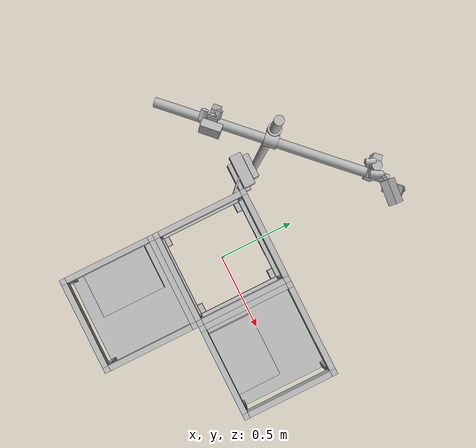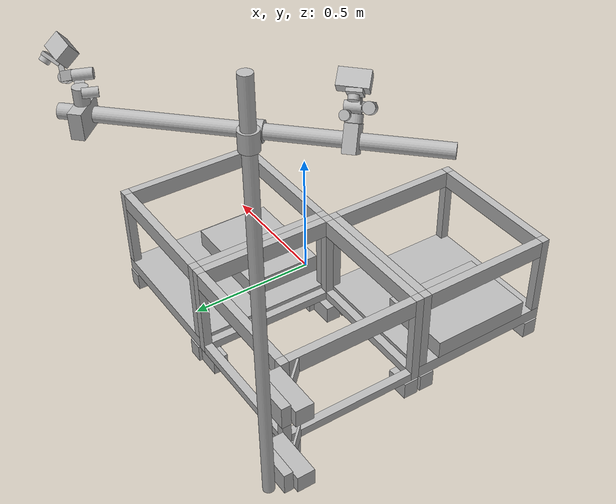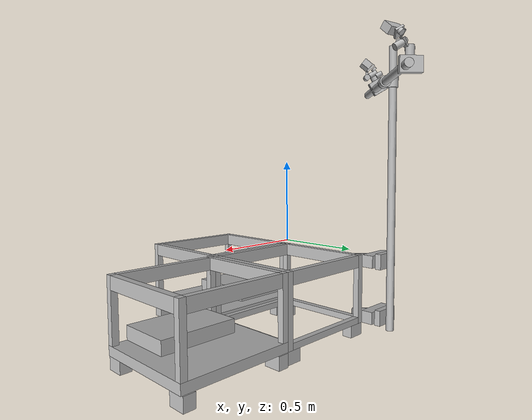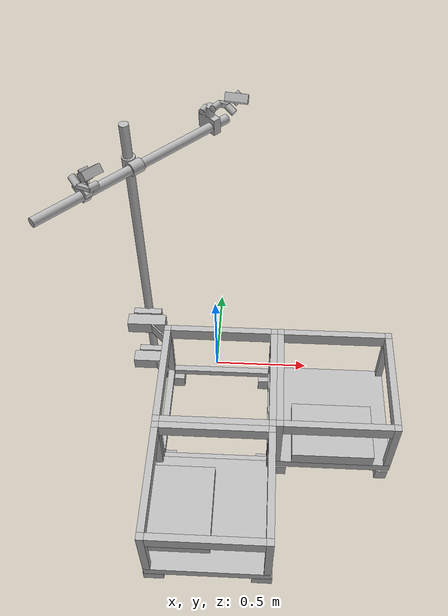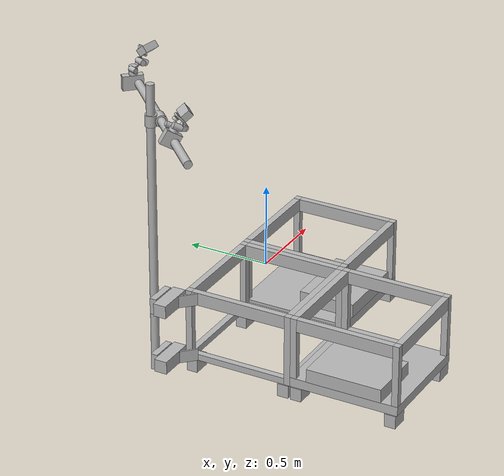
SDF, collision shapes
<?xml version="1.0"?>
<sdf version="1.7" xmlns:drake="drake.mit.edu">
  <model name="riverway_station">
    <link name="station_arm_cart_right">
      <pose>0 -0.6896 -0.099295 0 0 0</pose>
      <inertial>
        <!-- These are just placeholder inertial values, since this body is
        fixed to the world-->
        <pose>5.43e-05 -0.0196 0.0505 0 0 0</pose>
        <mass>0.136</mass>
        <inertia>
          <ixx> 0.000109</ixx>
          <ixy>-0.000000</ixy>
          <ixz> 0.000000</ixz>
          <iyy> 0.000128</iyy>
          <iyz>-0.000000</iyz>
          <izz> 0.000054</izz>
        </inertia>
      </inertial>
      <visual name="station_arm_cart_right">
        <pose>0 0 0 0 0 0</pose>
        <geometry>
          <mesh>
          <uri>/data/kylehatch/lbm_eval/lbm_eval_models/stations/franka_station/assets/station_arm_cart.gltf</uri>
            <scale>1.0 1.0 1.0</scale>
          </mesh>
        </geometry>
      </visual>
      <collision name="arm_cart_back_right_wheel_collision_box">
        <pose>0.29638 0.3024 -0.49143 0.0 -0.0 0.0</pose>
        <geometry>
          <box>
            <size>0.11144 0.06997 0.08225</size>
          </box>
        </geometry>
      </collision>
      <collision name="arm_cart_back_right_wheel_collision_box.001">
        <pose>0.29638 -0.3024 -0.49143 0.0 -0.0 0.0</pose>
        <geometry>
          <box>
            <size>0.11144 0.06997 0.08225</size>
          </box>
        </geometry>
      </collision>
      <collision name="arm_cart_bottom_collision_box">
        <pose>0.0 0.0 -0.42048 0.0 -0.0 0.0</pose>
        <geometry>
          <box>
            <size>0.6896 0.6896 0.05905</size>
          </box>
        </geometry>
      </collision>
      <collision name="arm_cart_franka_control_collision_box">
        <pose>-0.1688 0.0 -0.34845 0.0 -0.0 0.0</pose>
        <geometry>
          <box>
            <size>0.357 0.478 0.085</size>
          </box>
        </geometry>
      </collision>
      <collision name="arm_cart_front_left_wheel_collision_box">
        <pose>-0.29638 0.3024 -0.49143 0.0 -0.0 0.0</pose>
        <geometry>
          <box>
            <size>0.11144 0.06997 0.08225</size>
          </box>
        </geometry>
      </collision>
      <collision name="arm_cart_front_right_wheel_collision_box">
        <pose>-0.29638 -0.3024 -0.49143 0.0 -0.0 0.0</pose>
        <geometry>
          <box>
            <size>0.11144 0.06997 0.08225</size>
          </box>
        </geometry>
      </collision>
      <collision name="arm_cart_top_back_collision_box">
        <pose>0.3248 0.0 -0.04 0.0 -0.0 0.0</pose>
        <geometry>
          <box>
            <size>0.04 0.6096 0.08</size>
          </box>
        </geometry>
      </collision>
      <collision name="arm_cart_top_front_collision_box">
        <pose>-0.3248 0.0 -0.04 0.0 -0.0 0.0</pose>
        <geometry>
          <box>
            <size>0.04 0.6096 0.08</size>
          </box>
        </geometry>
      </collision>
      <collision name="arm_cart_top_left_collision_box">
        <pose>0.0 0.3248 -0.04 0.0 -0.0 1.5708</pose>
        <geometry>
          <box>
            <size>0.04 0.6096 0.08</size>
          </box>
        </geometry>
      </collision>
      <collision name="arm_cart_top_right_collision_box">
        <pose>0.0 -0.3248 -0.04 0.0 -0.0 1.5708</pose>
        <geometry>
          <box>
            <size>0.04 0.6096 0.08</size>
          </box>
        </geometry>
      </collision>
      <collision name="arm_cart_vertical_back_left_collision_box">
        <pose>0.3248 0.3248 -0.19548 0.0 -0.0 0.0</pose>
        <geometry>
          <box>
            <size>0.04 0.04 0.39095</size>
          </box>
        </geometry>
      </collision>
      <collision name="arm_cart_vertical_back_right_collision_box">
        <pose>0.3248 -0.3248 -0.19548 0.0 -0.0 0.0</pose>
        <geometry>
          <box>
            <size>0.04 0.04 0.39095</size>
          </box>
        </geometry>
      </collision>
      <collision name="arm_cart_vertical_front_left_collision_box">
        <pose>-0.3248 0.3248 -0.19548 0.0 -0.0 0.0</pose>
        <geometry>
          <box>
            <size>0.04 0.04 0.39095</size>
          </box>
        </geometry>
      </collision>
      <collision name="arm_cart_vertical_front_right_collision_box">
        <pose>-0.3248 -0.3248 -0.19548 0.0 -0.0 0.0</pose>
        <geometry>
          <box>
            <size>0.04 0.04 0.39095</size>
          </box>
        </geometry>
      </collision>
    </link>
    <link name="station_arm_cart_left">
      <pose>0.6896 0 -0.099295 0 0 1.5708</pose>
      <inertial>
        <!-- These are just placeholder inertial values, since this body is
        fixed to the world-->
        <pose>5.43e-05 -0.0196 0.0505 0 0 0</pose>
        <mass>0.136</mass>
        <inertia>
          <ixx> 0.000109</ixx>
          <ixy>-0.000000</ixy>
          <ixz> 0.000000</ixz>
          <iyy> 0.000128</iyy>
          <iyz>-0.000000</iyz>
          <izz> 0.000054</izz>
        </inertia>
      </inertial>
      <visual name="station_arm_cart_left">
        <pose>0 0 0 0 0 0</pose>
        <geometry>
          <mesh>
            <uri>/data/kylehatch/lbm_eval/lbm_eval_models/stations/franka_station/assets/station_arm_cart.gltf</uri>
            <scale>1.0 1.0 1.0</scale>
          </mesh>
        </geometry>
      </visual>
      <collision name="arm_cart_back_right_wheel_collision_box">
        <pose>0.29638 0.3024 -0.49143 0.0 -0.0 0.0</pose>
        <geometry>
          <box>
            <size>0.11144 0.06997 0.08225</size>
          </box>
        </geometry>
      </collision>
      <collision name="arm_cart_back_right_wheel_collision_box.001">
        <pose>0.29638 -0.3024 -0.49143 0.0 -0.0 0.0</pose>
        <geometry>
          <box>
            <size>0.11144 0.06997 0.08225</size>
          </box>
        </geometry>
      </collision>
      <collision name="arm_cart_bottom_collision_box">
        <pose>0.0 0.0 -0.42048 0.0 -0.0 0.0</pose>
        <geometry>
          <box>
            <size>0.6896 0.6896 0.05905</size>
          </box>
        </geometry>
      </collision>
      <collision name="arm_cart_franka_control_collision_box">
        <pose>-0.1688 0.0 -0.34845 0.0 -0.0 0.0</pose>
        <geometry>
          <box>
            <size>0.357 0.478 0.085</size>
          </box>
        </geometry>
      </collision>
      <collision name="arm_cart_front_left_wheel_collision_box">
        <pose>-0.29638 0.3024 -0.49143 0.0 -0.0 0.0</pose>
        <geometry>
          <box>
            <size>0.11144 0.06997 0.08225</size>
          </box>
        </geometry>
      </collision>
      <collision name="arm_cart_front_right_wheel_collision_box">
        <pose>-0.29638 -0.3024 -0.49143 0.0 -0.0 0.0</pose>
        <geometry>
          <box>
            <size>0.11144 0.06997 0.08225</size>
          </box>
        </geometry>
      </collision>
      <collision name="arm_cart_top_back_collision_box">
        <pose>0.3248 0.0 -0.04 0.0 -0.0 0.0</pose>
        <geometry>
          <box>
            <size>0.04 0.6096 0.08</size>
          </box>
        </geometry>
      </collision>
      <collision name="arm_cart_top_front_collision_box">
        <pose>-0.3248 0.0 -0.04 0.0 -0.0 0.0</pose>
        <geometry>
          <box>
            <size>0.04 0.6096 0.08</size>
          </box>
        </geometry>
      </collision>
      <collision name="arm_cart_top_left_collision_box">
        <pose>0.0 0.3248 -0.04 0.0 -0.0 1.5708</pose>
        <geometry>
          <box>
            <size>0.04 0.6096 0.08</size>
          </box>
        </geometry>
      </collision>
      <collision name="arm_cart_top_right_collision_box">
        <pose>0.0 -0.3248 -0.04 0.0 -0.0 1.5708</pose>
        <geometry>
          <box>
            <size>0.04 0.6096 0.08</size>
          </box>
        </geometry>
      </collision>
      <collision name="arm_cart_vertical_back_left_collision_box">
        <pose>0.3248 0.3248 -0.19548 0.0 -0.0 0.0</pose>
        <geometry>
          <box>
            <size>0.04 0.04 0.39095</size>
          </box>
        </geometry>
      </collision>
      <collision name="arm_cart_vertical_back_right_collision_box">
        <pose>0.3248 -0.3248 -0.19548 0.0 -0.0 0.0</pose>
        <geometry>
          <box>
            <size>0.04 0.04 0.39095</size>
          </box>
        </geometry>
      </collision>
      <collision name="arm_cart_vertical_front_left_collision_box">
        <pose>-0.3248 0.3248 -0.19548 0.0 -0.0 0.0</pose>
        <geometry>
          <box>
            <size>0.04 0.04 0.39095</size>
          </box>
        </geometry>
      </collision>
      <collision name="arm_cart_vertical_front_right_collision_box">
        <pose>-0.3248 -0.3248 -0.19548 0.0 -0.0 0.0</pose>
        <geometry>
          <box>
            <size>0.04 0.04 0.39095</size>
          </box>
        </geometry>
      </collision>
    </link>
    <link name="station_table_cart">
      <pose>0 0 -0.099295 0 0 0</pose>
      <inertial>
        <!-- These are just placeholder inertial values, since this body is
        fixed to the world-->
        <pose>5.43e-05 -0.0196 0.0505 0 0 0</pose>
        <mass>0.136</mass>
        <inertia>
          <ixx> 0.000109</ixx>
          <ixy>-0.000000</ixy>
          <ixz> 0.000000</ixz>
          <iyy> 0.000128</iyy>
          <iyz>-0.000000</iyz>
          <izz> 0.000054</izz>
        </inertia>
      </inertial>
      <visual name="station_table_cart">
        <pose>0 0 0 0 0 0</pose>
        <geometry>
          <mesh>
            <uri>/data/kylehatch/lbm_eval/lbm_eval_models/stations/franka_station/assets/station_table_cart.gltf</uri>
            <scale>1.0 1.0 1.0</scale>
          </mesh>
        </geometry>
      </visual>
      <collision name="camera_left_collision_base_box">
        <pose>-0.6483 0.24775 1.12349 2.10351 0.0 0.77681</pose>
        <geometry>
          <box>
            <size>0.043 0.08951 0.09998</size>
          </box>
        </geometry>
      </collision>
      <collision name="camera_left_collision_box">
        <pose>-0.62256 0.17861 1.19346 0.41602 -0.34462 1.48384</pose>
        <geometry>
          <box>
            <size>0.01822 0.06427 0.03147</size>
          </box>
        </geometry>
      </collision>
      <collision name="camera_left_collision_box.001">
        <pose>-0.60212 0.18475 1.20887 1.60122 0.14737 2.35535</pose>
        <geometry>
          <box>
            <size>0.01645 0.02924 0.00436</size>
          </box>
        </geometry>
      </collision>
      <collision name="camera_left_collision_box.002">
        <pose>-0.60691 0.21 1.24482 -0.76817 -3.1115 0.78009</pose>
        <geometry>
          <box>
            <size>0.05 0.061 0.0125</size>
          </box>
        </geometry>
      </collision>
      <collision name="camera_left_collision_cylinder">
        <pose>-0.63246 0.23165 1.17896 0.39937 -0.36251 1.4756</pose>
        <geometry>
          <cylinder>
            <radius>0.02719</radius>
            <length>0.027</length>
          </cylinder>
        </geometry>
      </collision>
      <collision name="camera_left_collision_cylinder.001">
        <pose>-0.63384 0.26364 1.20028 1.0371 -0.05908 3.9388</pose>
        <geometry>
          <cylinder>
            <radius>0.01621</radius>
            <length>0.04376</length>
          </cylinder>
        </geometry>
      </collision>
      <collision name="camera_left_collision_cylinder.002">
        <pose>-0.66134 0.19597 1.2144 1.0361 -0.08284 3.95291</pose>
        <geometry>
          <cylinder>
            <radius>0.01942</radius>
            <length>0.05538</length>
          </cylinder>
        </geometry>
      </collision>
      <collision name="camera_left_collision_cylinder.003">
        <pose>-0.58224 0.19875 1.18098 1.60155 0.20861 2.35726</pose>
        <geometry>
          <cylinder>
            <radius>0.01951</radius>
            <length>0.054</length>
          </cylinder>
        </geometry>
      </collision>
      <collision name="camera_left_collision_cylinder.004">
        <pose>-0.62448 0.22857 1.24092 -0.7681 -3.10939 0.77792</pose>
        <geometry>
          <cylinder>
            <radius>0.01747</radius>
            <length>0.0165</length>
          </cylinder>
        </geometry>
      </collision>
      <collision name="camera_left_main_camera_collision_box">
        <pose>-0.57919 0.19384 1.26633 0.90171 -0.01125 0.77134</pose>
        <geometry>
          <box>
            <size>0.10113 0.044 0.059</size>
          </box>
        </geometry>
      </collision>
      <collision name="camera_right_collision_base_box">
        <pose>-0.0755 0.83854 1.11225 0.0 -0.0 2.34761</pose>
        <geometry>
          <box>
            <size>0.12543 0.04391 0.08894</size>
          </box>
        </geometry>
      </collision>
      <collision name="camera_right_collision_box">
        <pose>-0.04785 0.82398 1.20889 0.76533 -0.00049 4.32723</pose>
        <geometry>
          <box>
            <size>0.03037 0.01785 0.00998</size>
          </box>
        </geometry>
      </collision>
      <collision name="camera_right_collision_box.001">
        <pose>0.03449 0.84372 1.23151 2.10765 0.20231 1.14393</pose>
        <geometry>
          <box>
            <size>0.01645 0.02435 0.00436</size>
          </box>
        </geometry>
      </collision>
      <collision name="camera_right_collision_box.002">
        <pose>5e-05 0.83873 1.21866 0.33572 0.41994 0.33522</pose>
        <geometry>
          <box>
            <size>0.06045 0.0174 0.03147</size>
          </box>
        </geometry>
      </collision>
      <collision name="camera_right_collision_box.003">
        <pose>0.07049 0.8551 1.24797 2.50526 -0.52475 2.5957</pose>
        <geometry>
          <box>
            <size>0.05 0.061 0.0125</size>
          </box>
        </geometry>
      </collision>
      <collision name="camera_right_collision_cylinder">
        <pose>-0.07268 0.83452 1.18505 0.01454 -0.01384 1.97093</pose>
        <geometry>
          <cylinder>
            <radius>0.02508</radius>
            <length>0.05582</length>
          </cylinder>
        </geometry>
      </collision>
      <collision name="camera_right_collision_cylinder.001">
        <pose>-0.10262 0.81584 1.20119 1.5703 -0.04117 -0.38514</pose>
        <geometry>
          <cylinder>
            <radius>0.01613</radius>
            <length>0.04978</length>
          </cylinder>
        </geometry>
      </collision>
      <collision name="camera_right_collision_cylinder.002">
        <pose>-0.03679 0.80577 1.22888 1.48618 0.4637 -0.53989</pose>
        <geometry>
          <cylinder>
            <radius>0.01817</radius>
            <length>0.06419</length>
          </cylinder>
        </geometry>
      </collision>
      <collision name="camera_right_collision_cylinder.003">
        <pose>0.03716 0.83417 1.19448 2.11498 0.25486 1.17631</pose>
        <geometry>
          <cylinder>
            <radius>0.019</radius>
            <length>0.054</length>
          </cylinder>
        </geometry>
      </collision>
      <collision name="camera_right_collision_cylinder.004">
        <pose>0.08101 0.87355 1.2456 2.36673 -0.22771 2.96498</pose>
        <geometry>
          <cylinder>
            <radius>0.01747</radius>
            <length>0.0165</length>
          </cylinder>
        </geometry>
      </collision>
      <collision name="camera_right_main_camera_collision_box">
        <pose>0.06928 0.82109 1.2689 0.873 0.03764 -0.08842</pose>
        <geometry>
          <box>
            <size>0.12 0.044 0.059</size>
          </box>
        </geometry>
      </collision>
      <collision name="table_cart_back_left_wheel_collision_box">
        <pose>0.29638 0.3024 -0.49143 0.0 0.0 -0.0</pose>
        <geometry>
          <box>
            <size>0.11144 0.06997 0.08225</size>
          </box>
        </geometry>
      </collision>
      <collision name="table_cart_back_right_wheel_collision_box">
        <pose>0.29638 -0.3024 -0.49143 0.0 0.0 -0.0</pose>
        <geometry>
          <box>
            <size>0.11144 0.06997 0.08225</size>
          </box>
        </geometry>
      </collision>
      <collision name="table_cart_bottom_back_collision_box">
        <pose>0.3248 8e-05 -0.43 0.0 0.0 -0.0</pose>
        <geometry>
          <box>
            <size>0.04 0.60977 0.04</size>
          </box>
        </geometry>
      </collision>
      <collision name="table_cart_bottom_front_collision_box">
        <pose>-0.3248 8e-05 -0.43 0.0 0.0 -0.0</pose>
        <geometry>
          <box>
            <size>0.04 0.60977 0.04</size>
          </box>
        </geometry>
      </collision>
      <collision name="table_cart_bottom_left_collision_box">
        <pose>-8e-05 0.3248 -0.43 0.0 -0.0 1.5708</pose>
        <geometry>
          <box>
            <size>0.04 0.60977 0.04</size>
          </box>
        </geometry>
      </collision>
      <collision name="table_cart_bottom_pole_clamp_connector_collision_box">
        <pose>-0.4598 0.44563 -0.41 0.0 0.0 -0.0</pose>
        <geometry>
          <box>
            <size>0.17 0.04165 0.1</size>
          </box>
        </geometry>
      </collision>
      <collision name="table_cart_bottom_pole_connector_bracket_collision_b">
        <pose>-0.38423 0.30537 -0.41 0.0 0.0 -0.78539</pose>
        <geometry>
          <box>
            <size>0.11319 0.01 0.076</size>
          </box>
        </geometry>
      </collision>
      <collision name="table_cart_bottom_pole_connector_collision_box">
        <pose>-0.4598 0.3848 -0.41 0.0 0.0 -0.0</pose>
        <geometry>
          <box>
            <size>0.23 0.08 0.08</size>
          </box>
        </geometry>
      </collision>
      <collision name="table_cart_bottom_right_collision_box">
        <pose>-8e-05 -0.3248 -0.43 0.0 -0.0 1.5708</pose>
        <geometry>
          <box>
            <size>0.04 0.60977 0.04</size>
          </box>
        </geometry>
      </collision>
      <collision name="table_cart_front_left_wheel_collision_box">
        <pose>-0.29638 0.3024 -0.49143 0.0 0.0 -0.0</pose>
        <geometry>
          <box>
            <size>0.11144 0.06997 0.08225</size>
          </box>
        </geometry>
      </collision>
      <collision name="table_cart_front_right_wheel_collision_box">
        <pose>-0.29638 -0.3024 -0.49143 0.0 0.0 -0.0</pose>
        <geometry>
          <box>
            <size>0.11144 0.06997 0.08225</size>
          </box>
        </geometry>
      </collision>
      <collision name="table_cart_horizontal_camera_pole_collision_cylinder">
        <pose>-0.4191 0.45009 1.10512 -2.34689 1.5708 1.57997</pose>
        <geometry>
          <cylinder>
            <radius>0.02511</radius>
            <length>1.2192</length>
          </cylinder>
        </geometry>
      </collision>
      <collision name="table_cart_pole_clamp_collision_cylinder">
        <pose>-0.41993 0.45054 1.10512 0.77547 1.5708 1.56059</pose>
        <geometry>
          <cylinder>
            <radius>0.03562</radius>
            <length>0.07</length>
          </cylinder>
        </geometry>
      </collision>
      <collision name="table_cart_pole_clamp_collision_cylinder.001">
        <pose>-0.45797 0.48665 1.10597 0.0 3.14159 0.7854</pose>
        <geometry>
          <cylinder>
            <radius>0.03562</radius>
            <length>0.07</length>
          </cylinder>
        </geometry>
      </collision>
      <collision name="table_cart_top_back_collision_box">
        <pose>0.3248 0.0 -0.04 0.0 0.0 -0.0</pose>
        <geometry>
          <box>
            <size>0.04 0.6096 0.08</size>
          </box>
        </geometry>
      </collision>
      <collision name="table_cart_top_front_collision_box">
        <pose>-0.3248 -0.0 -0.04 0.0 0.0 -0.0</pose>
        <geometry>
          <box>
            <size>0.04 0.6096 0.08</size>
          </box>
        </geometry>
      </collision>
      <collision name="table_cart_top_left_collision_box">
        <pose>-0.0 0.3248 -0.04 0.0 -0.0 1.5708</pose>
        <geometry>
          <box>
            <size>0.04 0.6096 0.08</size>
          </box>
        </geometry>
      </collision>
      <collision name="table_cart_top_pole_clamp_connector_collision_box">
        <pose>-0.4598 0.44563 -0.04 0.0 0.0 -0.0</pose>
        <geometry>
          <box>
            <size>0.17 0.04165 0.1</size>
          </box>
        </geometry>
      </collision>
      <collision name="table_cart_top_pole_connector_bracket_collision_box">
        <pose>-0.38423 0.30537 -0.04 0.0 0.0 -0.78539</pose>
        <geometry>
          <box>
            <size>0.11319 0.01 0.076</size>
          </box>
        </geometry>
      </collision>
      <collision name="table_cart_top_pole_connector_collision_box">
        <pose>-0.4598 0.3848 -0.04 0.0 0.0 -0.0</pose>
        <geometry>
          <box>
            <size>0.23 0.08 0.08</size>
          </box>
        </geometry>
      </collision>
      <collision name="table_cart_top_right_collision_box">
        <pose>0.0 -0.3248 -0.04 0.0 -0.0 1.5708</pose>
        <geometry>
          <box>
            <size>0.04 0.6096 0.08</size>
          </box>
        </geometry>
      </collision>
      <collision name="table_cart_vertical_back_left_collision_box">
        <pose>0.3248 0.3248 -0.22515 0.0 0.0 -0.0</pose>
        <geometry>
          <box>
            <size>0.04 0.04 0.4503</size>
          </box>
        </geometry>
      </collision>
      <collision name="table_cart_vertical_back_right_collision_box">
        <pose>0.3248 -0.3248 -0.22515 0.0 0.0 -0.0</pose>
        <geometry>
          <box>
            <size>0.04 0.04 0.4503</size>
          </box>
        </geometry>
      </collision>
      <collision name="table_cart_vertical_camera_pole_collision_cylinder">
        <pose>-0.4598 0.4875 0.4144 0.0 0.0 -0.0</pose>
        <geometry>
          <cylinder>
            <radius>0.02511</radius>
            <length>1.8288</length>
          </cylinder>
        </geometry>
      </collision>
      <collision name="table_cart_vertical_front_left_collision_box">
        <pose>-0.3248 0.3248 -0.22515 0.0 0.0 -0.0</pose>
        <geometry>
          <box>
            <size>0.04 0.04 0.4503</size>
          </box>
        </geometry>
      </collision>
      <collision name="table_cart_vertical_front_right_collision_box">
        <pose>-0.3248 -0.3248 -0.22515 0.0 0.0 -0.0</pose>
        <geometry>
          <box>
            <size>0.04 0.04 0.4503</size>
          </box>
        </geometry>
      </collision>
    </link>
    <joint name='weld_joint_1' type='fixed'>
      <parent>station_table_cart</parent>
      <child>station_arm_cart_left</child>
    </joint>
    <joint name='weld_joint_2' type='fixed'>
      <parent>station_table_cart</parent>
      <child>station_arm_cart_right</child>
    </joint>
  </model>
</sdf>
